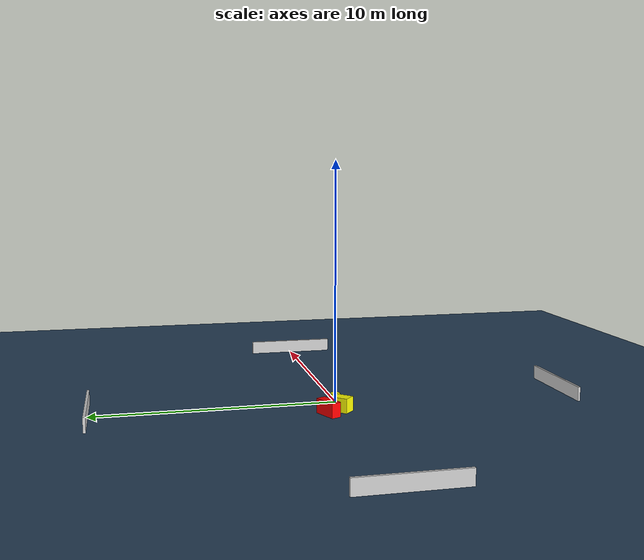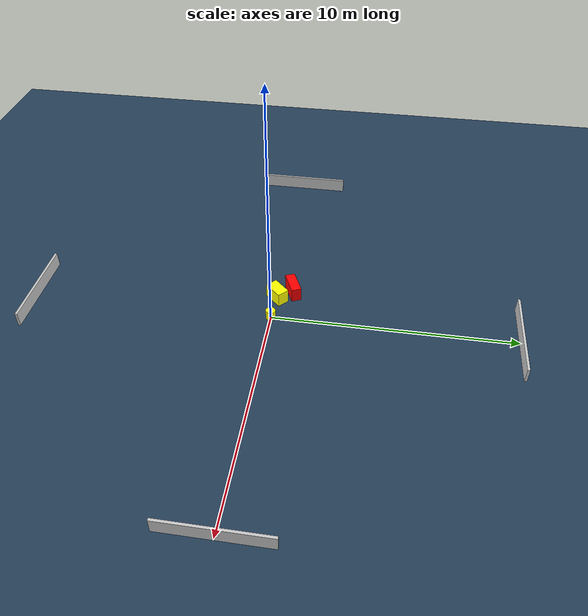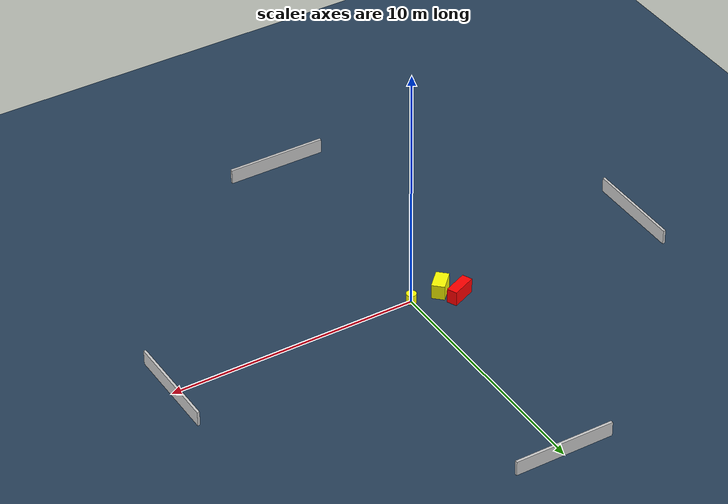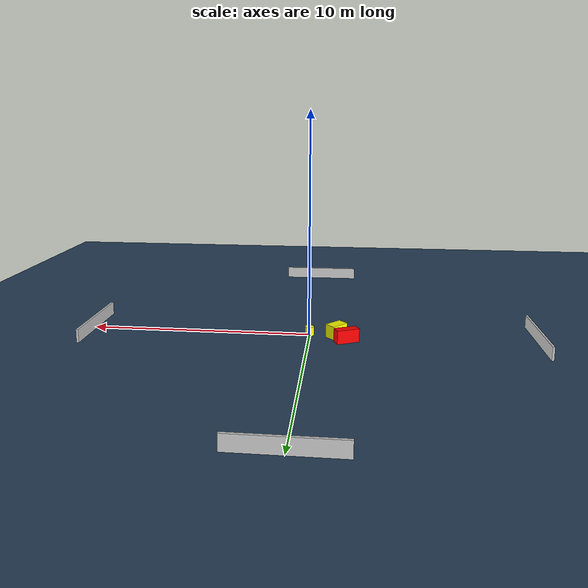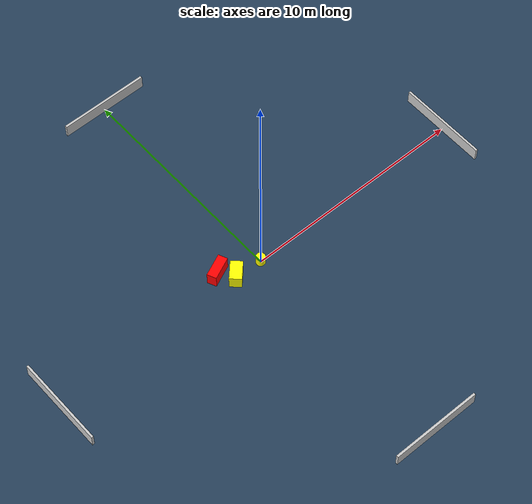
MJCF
<?xml version="1.0" ?>
<mujoco model="generated_environment">
  <option timestep="0.01" integrator="RK4" cone="elliptic"/>
  <default>
    <geom density="1"/>
  </default>
  <asset>
    <texture builtin="gradient" height="3072" name="skybox" rgb1="0.3 0.5 0.7" rgb2="0 0 0" type="skybox" width="512"/>
    <texture builtin="checker" height="300" name="groundplane" rgb1="0.2 0.3 0.4" rgb2="0.1 0.2 0.3" type="2d" width="300"/>
    <material name="groundplane" reflectance="0.2" texrepeat="5 5" texture="groundplane"/>
  </asset>
  <worldbody>
    <light dir="0 0 -1" directional="true" pos="0 0 1.5"/>
    <geom condim="3" friction="0.5 0.005 0.001" material="groundplane" name="floor" pos="0 0 0" size="0 0 0.05" type="plane"/>
    <body name="walls">
      <geom name="wall_1" condim="4" pos="-10.0 0.0 0.3" rgba="0.800000011920929 0.800000011920929 0.800000011920929 1.0" size="0.05 2.0 0.3" type="box"/>
      <geom name="wall_2" condim="4" pos="10.0 0.0 0.3" rgba="0.800000011920929 0.800000011920929 0.800000011920929 1.0" size="0.05 2.0 0.3" type="box"/>
      <geom name="wall_3" condim="4" pos="0.0 -10.0 0.3" rgba="0.800000011920929 0.800000011920929 0.800000011920929 1.0" size="2.0 0.05 0.3" type="box"/>
      <geom name="wall_4" condim="4" pos="0.0 10.0 0.3" rgba="0.800000011920929 0.800000011920929 0.800000011920929 1.0" size="2.0 0.05 0.3" type="box"/>
    </body>
    <body name="robot">
      <joint name="joint_x" type="slide" pos="0 0 0" axis="1 0 0"/>
      <joint name="joint_y" type="slide" pos="0 0 0" axis="0 1 0"/>
      <geom name="robot" type="cylinder" pos="0.0 0.0 0.2" size="0.2 0.2 0.0" mass="5.0" friction="1.0 0.005 0.0001" condim="4" rgba="1.0 1.0 0.0 1.0"/>
    </body>
    <body name="obstacle_1_movable">
      <geom name="obstacle_1_movable" condim="4" pos="-1.2168081109839897 0.07387855532483635 0.3" euler="0 0 315.9895365955227" friction="0.0 0.005 0.001" rgba="1.0 1.0 0.0 1.0" size="0.25786602786717067 0.4236727142312824 0.3" type="box" mass="0.1"/>
      <joint type="free"/>
    </body>
    <body name="obstacle_2_static">
      <geom name="obstacle_2_static" condim="4" pos="-1.673047071618239 0.6776864758319536 0.3" euler="0 0 293.8583472395749" friction="0.0 0.005 0.001" rgba="1.0 0.0 0.0 1.0" size="0.20745910190125302 0.5152674338990717 0.3" type="box"/>
    </body>
  </worldbody>
  <actuator>
    <motor name="actuator_x" joint="joint_x" gear="1" ctrlrange="-1 1"/>
    <motor name="actuator_y" joint="joint_y" gear="1" ctrlrange="-1 1"/>
  </actuator>
</mujoco>
